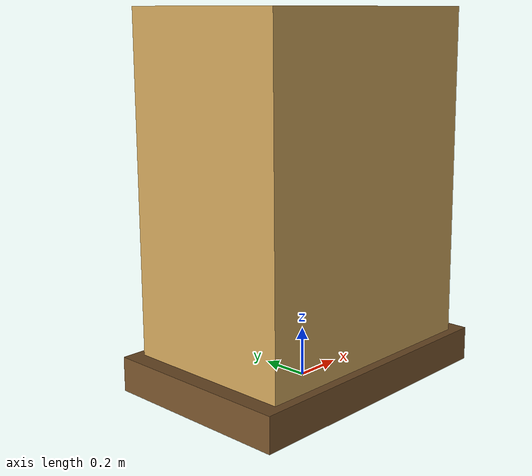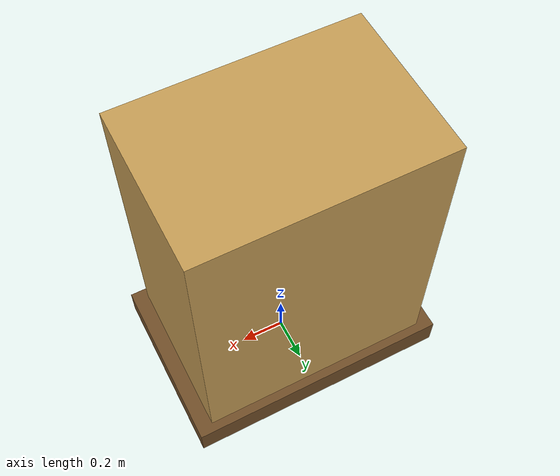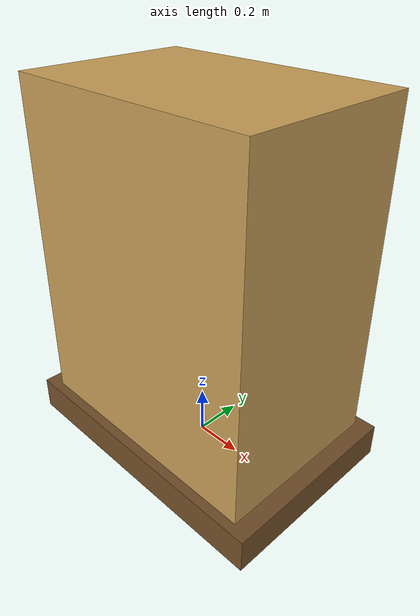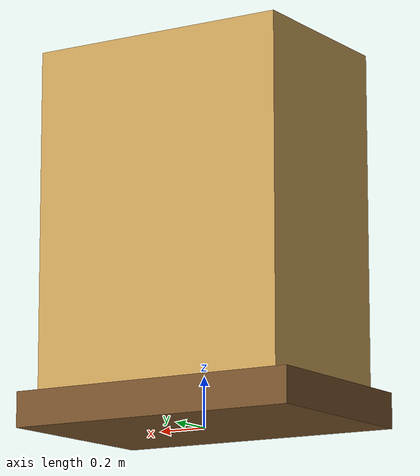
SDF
<?xml version="1.0" ?>
<sdf version="1.8">
  <!-- Generated by scripts/geometry_visibility/make_warehouse_full.py with the
       dynamic variant selected. Edit the generator, not this file. -->
  <model name="dyn_pallet_box">
    <static>false</static>
    <link name="body">
      <gravity>false</gravity>
      <inertial><mass>60.0</mass><inertia>
        <ixx>12.0</ixx><iyy>14.0</iyy><izz>8.0</izz><ixy>0</ixy><ixz>0</ixz><iyz>0</iyz>
      </inertia></inertial>
      <collision name="base_collision"><pose>0.000 0.000 0.070 0 0 0</pose><geometry><box><size>1.200 0.800 0.140</size></box></geometry></collision><visual name="base_visual"><pose>0.000 0.000 0.070 0 0 0</pose><geometry><box><size>1.200 0.800 0.140</size></box></geometry><material><ambient>0.45 0.31 0.16 1</ambient><diffuse>0.45 0.31 0.16 1</diffuse></material></visual><collision name="load_collision"><pose>0.000 0.000 0.815 0 0 0</pose><geometry><box><size>1.060 0.720 1.350</size></box></geometry></collision><visual name="load_visual"><pose>0.000 0.000 0.815 0 0 0</pose><geometry><box><size>1.060 0.720 1.350</size></box></geometry><material><ambient>0.78 0.62 0.34 1</ambient><diffuse>0.78 0.62 0.34 1</diffuse></material></visual>
    </link>
  </model>
</sdf>
